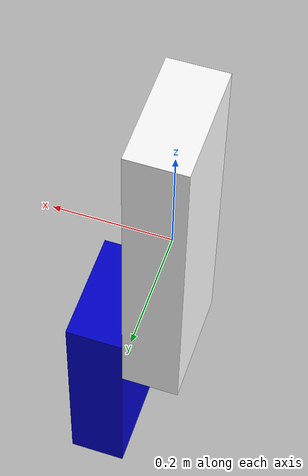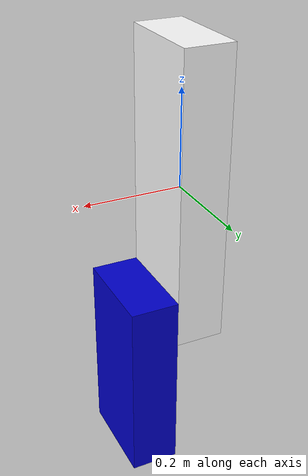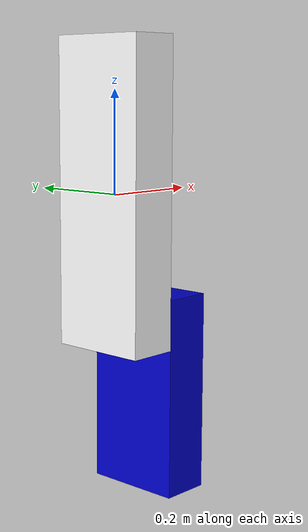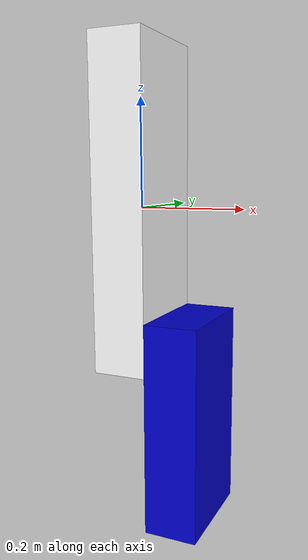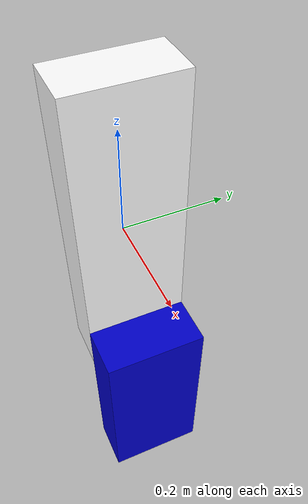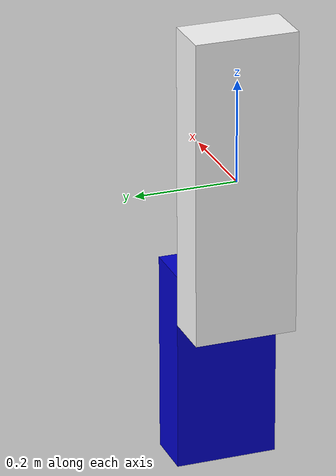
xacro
<?xml version="1.0"?>
<robot name="macroed" xmlns:xacro="http://ros.org/wiki/xacro">

	<xacro:property name="width_x" value = "0.1"/>
	<xacro:property name="width_y" value = "0.2"/>
	<xacro:property name="length_upper" value = "0.6"/>
	<xacro:property name="length_lower" value = "0.4"/>
	<xacro:property name="joint_offset" value = "0.05"/>

	<material name="blue">
		<color rgba="0 0 0.8 1"/>
	</material>
	<material name="black">
		<color rgba="0 0 0 1"/>
	</material>
	<material name="white">
		<color rgba="1 1 1 1"/>
	</material>

	<link name="base_link">
		<visual>
			<geometry>
				<box size = "${width_x}  ${width_y} ${length_upper}"/>
			</geometry>
			<origin xyz = "0 0 0"/>
			<material name="white"/>
		</visual>
	</link>

	<link name="forearm">
		<visual>
			<geometry>
				<box size = "${width_x} ${width_y} ${length_lower}"/>
			</geometry>
			<origin rpy = "0 0 0" xyz = "0 0 ${-length_lower/2 + joint_offset}"/>
			<material name = "blue"/>
		</visual>
	</link>

	<joint name="base_to_forearm" type ="revolute">
		<axis xyz = "1 0 0"/>
		<limit effort = "1000.0" lower="0.0" upper="2" velocity = "0.5"/>
		<parent link="base_link"/>
		<child link="forearm"/>
		<origin rpy="0 0 0" xyz = "${width_y/2} 0 ${-length_upper/2 + joint_offset}"/>
	</joint>

</robot>
